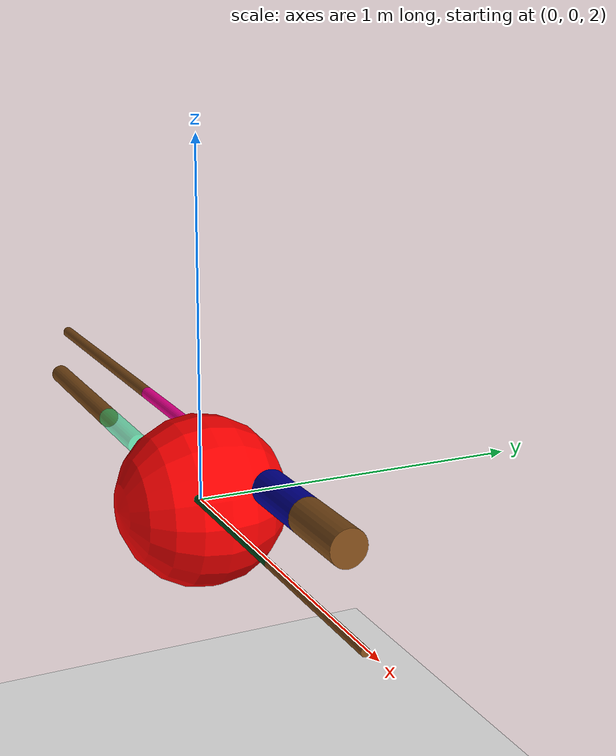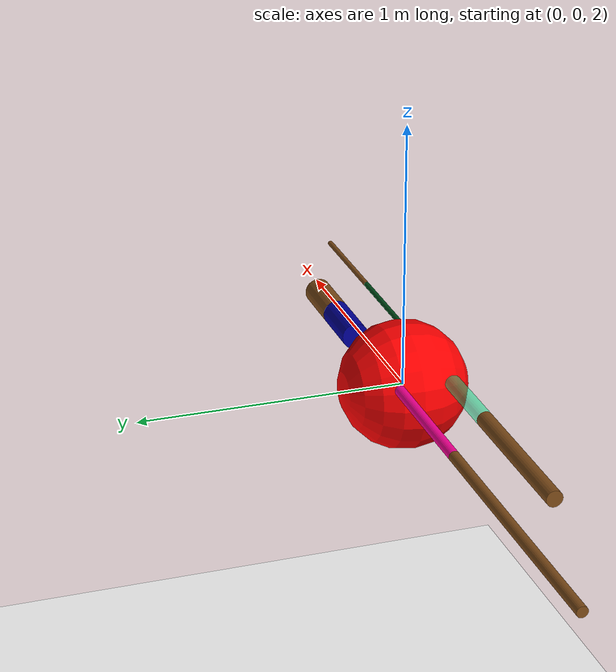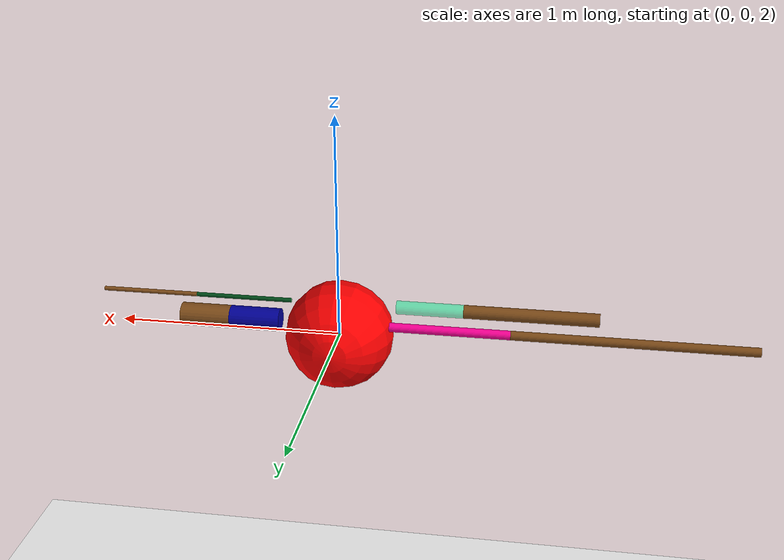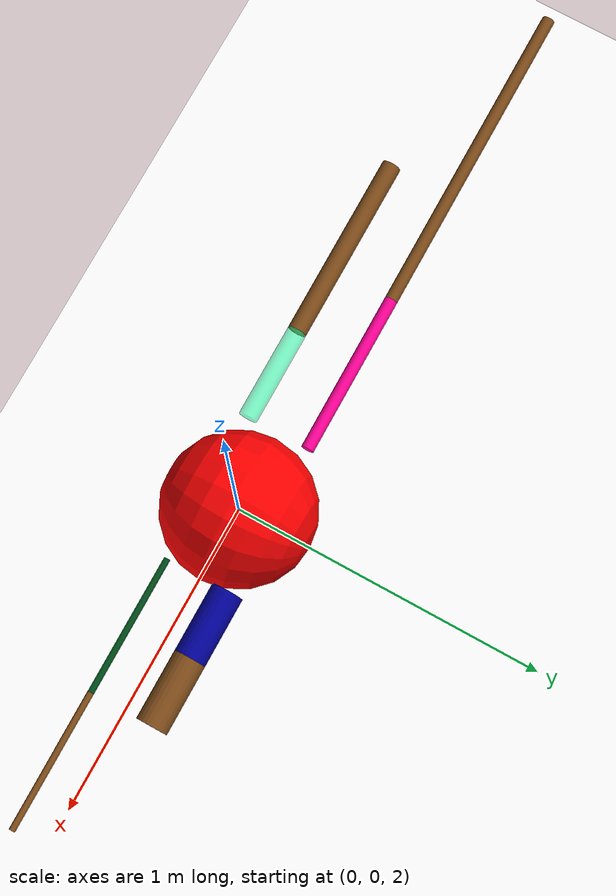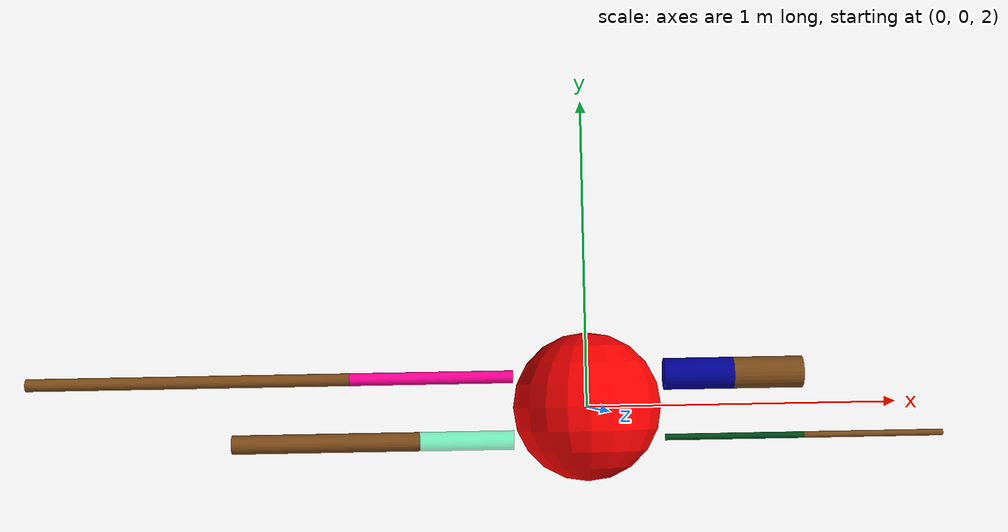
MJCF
<mujoco>
    <option gravity="0 0 -50.81" />
    <worldbody>
        <light diffuse="0.8 0.8 0.8" pos="0 0 8" dir="0 0 -1" />
        <geom type="plane" size="3 3 0.1" rgba="1 1 1 1" />

        <body name="main_body" pos="0 0 2">
            <joint name="main_body" type="free" />
            <geom type="sphere" size="0.24" rgba="1 0 0 1" euler="90 0 90" mass="40" />

            <body name="leg1" pos="-0.39 -0.1 0.1" euler="0 90 0">
                <joint name="leg1-1" pos="0 0 0.15" type="hinge" axis="0 1 0" range="-45 45" />
                <geom type="cylinder" size="0.03 0.15" rgba="0 1 0.6 0.5" mass="10" />
                <body name="shank1" pos="0 0 -0.4470524623860448">
                    <joint name="leg1-2" pos="0 0 0.2970524623860448" type="hinge" axis="0 1 0" range="-90 -70" />
                    <geom type="cylinder" size="0.03 0.2970524623860448" rgba="0.5 0.3 0.1 1" mass="30" />
                </body>
            </body>

            <body name="leg2" pos="-0.5 0.1 0.1" euler="0 90 0">
                <joint name="leg2-1" pos="0 0 0.26" type="hinge" axis="0 1 0" range="-45 45" />
                <geom type="cylinder" size="0.02 0.26" rgba="1 0 0.6 1" mass="10" />
                <body name="shank2" pos="0 0 -0.7748909348024777">
                    <joint name="leg2-2" pos="0 0 0.5148909348024777" type="hinge" axis="0 1 0" range="-90 -70" />
                    <geom type="cylinder" size="0.02 0.5148909348024777" rgba="0.5 0.3 0.1 1" mass="30" />
                </body>
            </body>

            <body name="leg3" pos="0.45999999999999996 -0.1 0.1" euler="0 -90 0">
                <joint name="leg3-1" pos="0 0 0.22" type="hinge" axis="0 1 0" range="-45 45" />
                <geom type="cylinder" size="0.01 0.22" rgba="0 0.3 0.1 1" mass="10" />
                <body name="shank3" pos="0 0 -0.44">
                    <joint name="leg3-2" pos="0 0 0.22" type="hinge" axis="0 1 0" range="70 90" />
                    <geom type="cylinder" size="0.01 0.22" rgba="0.5 0.3 0.1 1" mass="30" />
                </body>
            </body>

            <body name="leg4" pos="0.35 0.1 0.1" euler="0 -90 0">
                <joint name="leg4-1" pos="0 0 0.11" type="hinge" axis="0 1 0" range="-45 45" />
                <geom type="cylinder" size="0.05 0.11" rgba="0 0 0.6 1" mass="10" />
                <body name="shank4" pos="0 0 -0.22">
                    <joint name="leg4-2" pos="0 0 0.11" type="hinge" axis="0 1 0" range="70 90" />
                    <geom type="cylinder" size="0.05 0.11" rgba="0.5 0.3 0.1 1" mass="30" />
                </body>
            </body>
        </body>

    </worldbody>
    <actuator>
        <motor joint="leg1-1" name="fl1j" />
        <motor joint="leg1-2" name="fl2j" />
        <motor joint="leg3-1" name="bl1j" />
        <motor joint="leg3-2" name="bl2j" />
        <motor joint="leg2-1" name="fr1j" />
        <motor joint="leg2-2" name="fr2j" />
        <motor joint="leg4-1" name="br1j" />
        <motor joint="leg4-2" name="br2j" />
    </actuator>
</mujoco>
